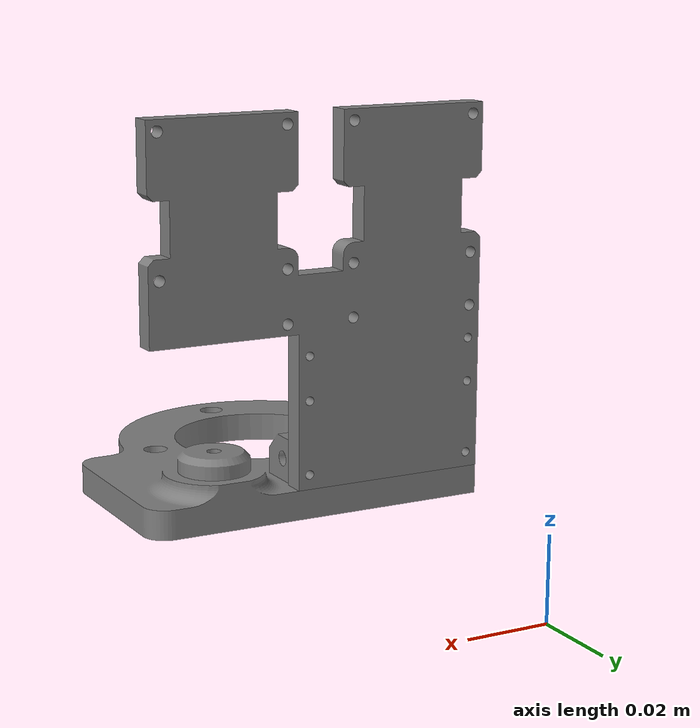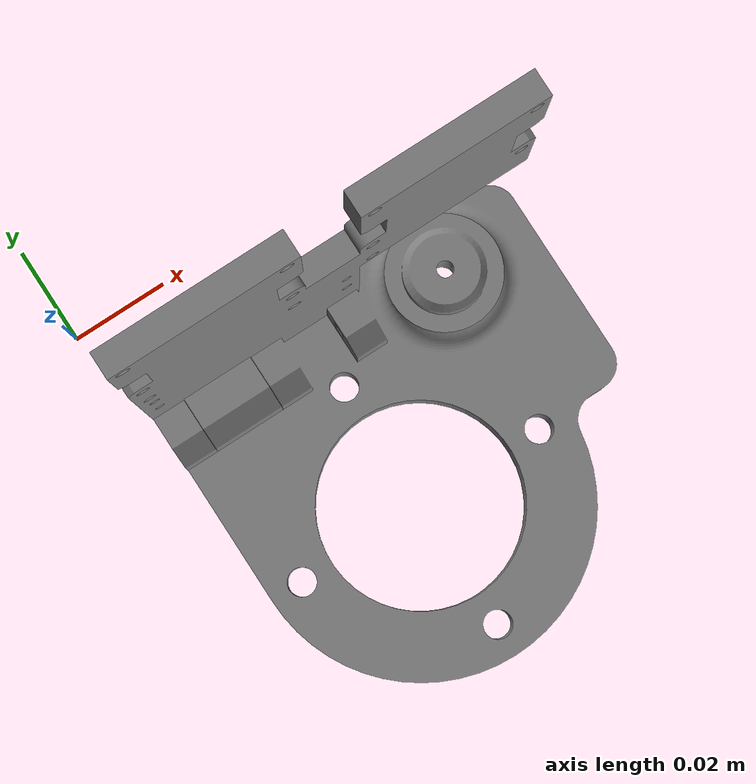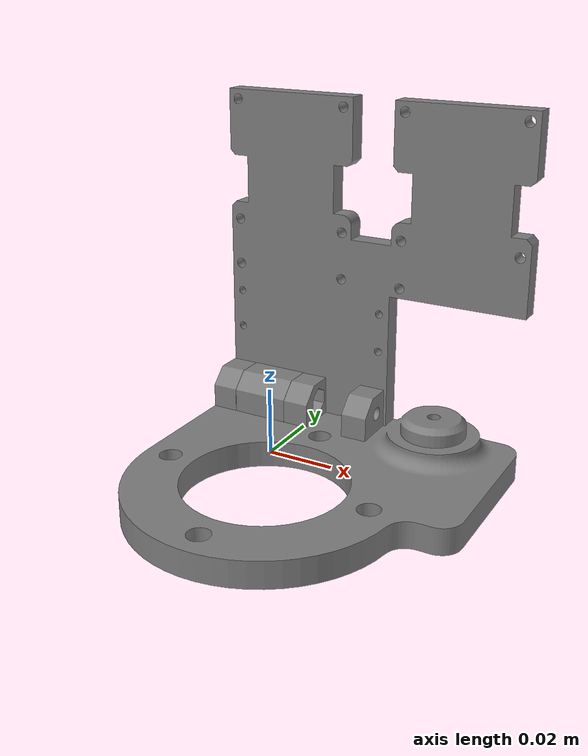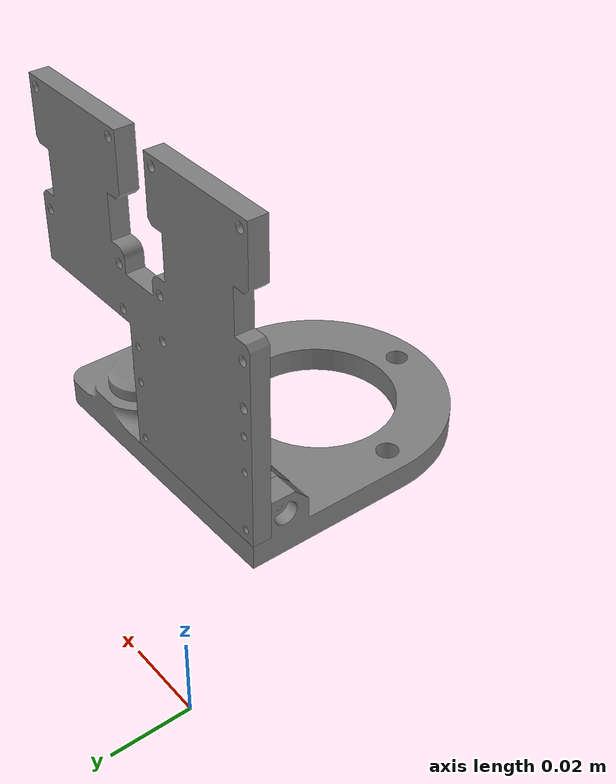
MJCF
<mujoco model="dexHand">

    <default>
        <geom type="mesh" xyaxes="1 0 0 0 0 1"/>
    </default>
    <asset>
        <!-- Include textures, meshes, and materials here if needed -->
        <mesh name="PalmBoard" file="mujocoSim/STLFiles/DexterousHand - PalmPlate^DexterousHand-1.stl" scale="0.001 0.001 0.001" />
        <mesh name="BaseBoard" file="mujocoSim/STLFiles/DexterousHand - BaseModule^DexterousHand-1.stl" scale="0.001 0.001 0.001" />
    </asset>
    <worldbody>
        <body name= "BaseBoard">
            <geom mesh= "BaseBoard"/>
            <body name="PalmBoard">
                <geom mesh="PalmBoard"/>
            </body>
        </body>

    </worldbody>

</mujoco>
